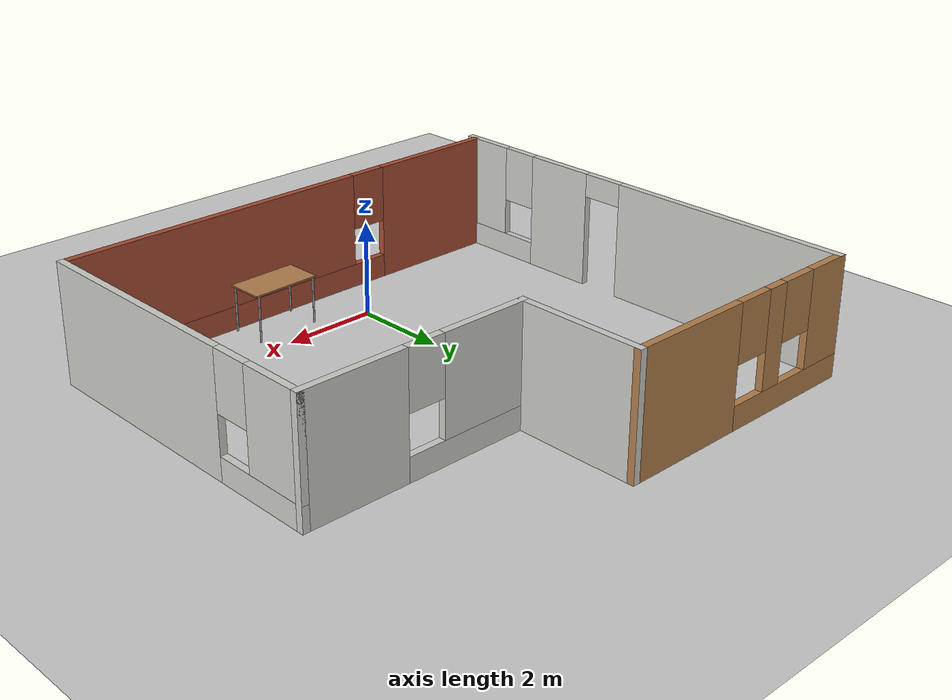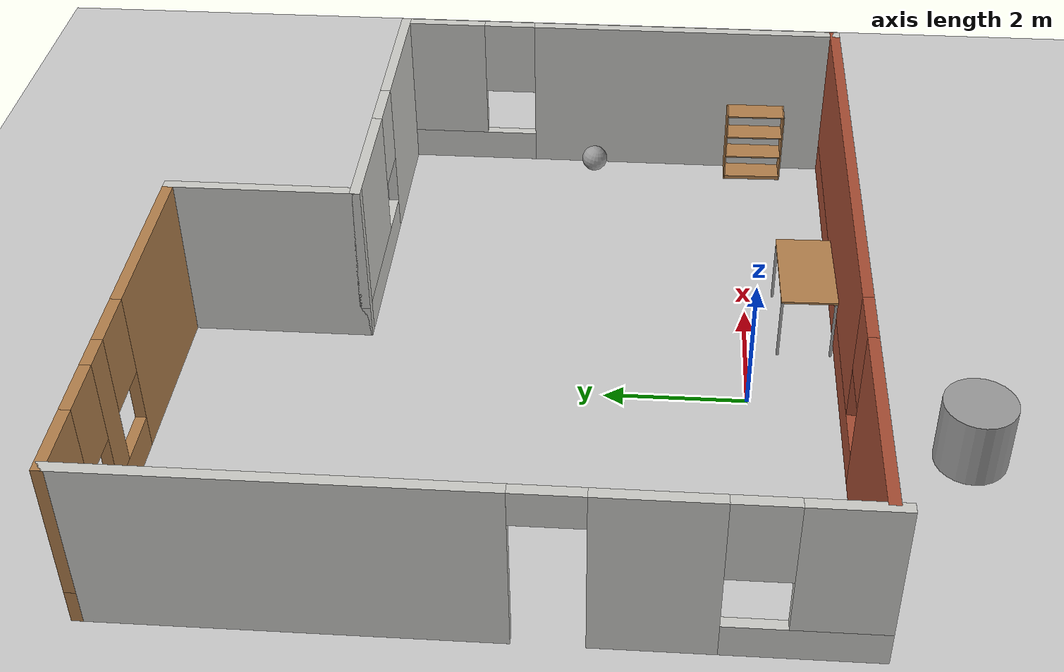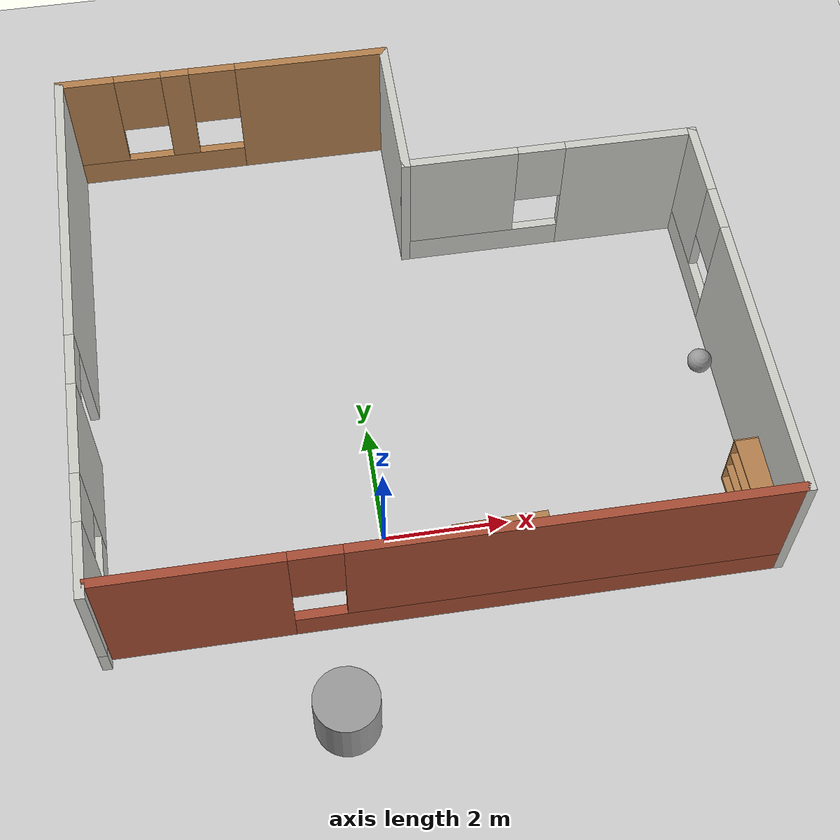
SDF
<sdf version="1.6">
 <world name="default">
  <plugin name="welcome_message" filename="libwelcome_message.so"/>
  <light name="sun" type="directional">
   <pose>0 0 10 0 -0 0</pose>
   <diffuse>0.8 0.8 0.8 1</diffuse>
   <specular>0.2 0.2 0.2 1</specular>
   <attenuation>
    <range>1000</range>
    <constant>0.9</constant>
    <linear>0.01</linear>
    <quadratic>0.001</quadratic>
   </attenuation>
   <direction>-0.5 0.1 -0.9</direction>
  </light>
  <model name="ground_plane">
   <static>1</static>
   <link name="link">
    <collision name="collision">
     <geometry><plane><normal>0 0 1</normal><size>100 100</size></plane></geometry>
     <surface>
      <contact><collide_bitmask>65535</collide_bitmask></contact>
      <friction><ode><mu>100</mu><mu2>50</mu2></ode></friction>
     </surface>
    </collision>
    <visual name="visual">
     <cast_shadows>0</cast_shadows>
     <geometry><plane><normal>0 0 1</normal><size>100 100</size></plane></geometry>
     <material>
      <script><uri>file://media/materials/scripts/gazebo.material</uri><name>Gazebo/Grey</name></script>
     </material>
    </visual>
   </link>
  </model>
  <gravity>0 0 -9.8</gravity>
  <magnetic_field>6e-06 2.3e-05 -4.2e-05</magnetic_field>
  <atmosphere type="adiabatic"/>
  <physics name="default_physics" default="0" type="ode">
   <max_step_size>0.001</max_step_size>
   <real_time_factor>1</real_time_factor>
   <real_time_update_rate>1000</real_time_update_rate>
  </physics>
  <scene><ambient>0.4 0.4 0.4 1</ambient><background>0.7 0.7 0.7 1</background><shadows>1</shadows></scene>
  <spherical_coordinates>
   <surface_model>EARTH_WGS84</surface_model>
   <latitude_deg>0</latitude_deg>
   <longitude_deg>0</longitude_deg>
   <elevation>0</elevation>
   <heading_deg>0</heading_deg>
  </spherical_coordinates>
  <model name="table">
   <static>1</static>
   <link name="link">
    <collision name="surface">
     <pose>0 0 1 0 -0 0</pose>
     <geometry><box><size>1.5 0.8 0.03</size></box></geometry>
     <surface><friction><ode><mu>0.6</mu><mu2>0.6</mu2></ode></friction></surface>
    </collision>
    <visual name="visual1">
     <pose>0 0 1 0 -0 0</pose>
     <geometry><box><size>1.5 0.8 0.03</size></box></geometry>
     <material>
      <script><uri>file://media/materials/scripts/gazebo.material</uri><name>Gazebo/Wood</name></script>
     </material>
    </visual>
    <collision name="front_left_leg">
     <pose>0.68 0.38 0.5 0 -0 0</pose>
     <geometry><cylinder><radius>0.02</radius><length>1</length></cylinder></geometry>
    </collision>
    <visual name="front_left_leg">
     <pose>0.68 0.38 0.5 0 -0 0</pose>
     <geometry><cylinder><radius>0.02</radius><length>1</length></cylinder></geometry>
     <material>
      <script><uri>file://media/materials/scripts/gazebo.material</uri><name>Gazebo/Grey</name></script>
     </material>
    </visual>
    <collision name="front_right_leg">
     <pose>0.68 -0.38 0.5 0 -0 0</pose>
     <geometry><cylinder><radius>0.02</radius><length>1</length></cylinder></geometry>
    </collision>
    <visual name="front_right_leg">
     <pose>0.68 -0.38 0.5 0 -0 0</pose>
     <geometry><cylinder><radius>0.02</radius><length>1</length></cylinder></geometry>
     <material>
      <script><uri>file://media/materials/scripts/gazebo.material</uri><name>Gazebo/Grey</name></script>
     </material>
    </visual>
    <collision name="back_right_leg">
     <pose>-0.68 -0.38 0.5 0 -0 0</pose>
     <geometry><cylinder><radius>0.02</radius><length>1</length></cylinder></geometry>
    </collision>
    <visual name="back_right_leg">
     <pose>-0.68 -0.38 0.5 0 -0 0</pose>
     <geometry><cylinder><radius>0.02</radius><length>1</length></cylinder></geometry>
     <material>
      <script><uri>file://media/materials/scripts/gazebo.material</uri><name>Gazebo/Grey</name></script>
     </material>
    </visual>
    <collision name="back_left_leg">
     <pose>-0.68 0.38 0.5 0 -0 0</pose>
     <geometry><cylinder><radius>0.02</radius><length>1</length></cylinder></geometry>
    </collision>
    <visual name="back_left_leg">
     <pose>-0.68 0.38 0.5 0 -0 0</pose>
     <geometry><cylinder><radius>0.02</radius><length>1</length></cylinder></geometry>
     <material>
      <script><uri>file://media/materials/scripts/gazebo.material</uri><name>Gazebo/Grey</name></script>
     </material>
    </visual>
   </link>
   <pose>1.74292 -0.818656 0 0 -0 0.020924</pose>
  </model>
  <model name="bookshelf">
   <static>1</static>
   <link name="link">
    <inertial><mass>1</mass></inertial>
    <collision name="back">
     <pose>0 0.005 0.6 0 -0 0</pose>
     <geometry><box><size>0.9 0.01 1.2</size></box></geometry>
    </collision>
    <visual name="visual1">
     <pose>0 0.005 0.6 0 -0 0</pose>
     <geometry><box><size>0.9 0.01 1.2</size></box></geometry>
     <material>
      <script><uri>file://media/materials/scripts/gazebo.material</uri><name>Gazebo/Wood</name></script>
     </material>
    </visual>
    <collision name="left_side">
     <pose>0.45 -0.195 0.6 0 -0 0</pose>
     <geometry><box><size>0.02 0.4 1.2</size></box></geometry>
    </collision>
    <visual name="visual2">
     <pose>0.45 -0.195 0.6 0 -0 0</pose>
     <geometry><box><size>0.02 0.4 1.2</size></box></geometry>
     <material>
      <script><uri>file://media/materials/scripts/gazebo.material</uri><name>Gazebo/Wood</name></script>
     </material>
    </visual>
    <collision name="right_side">
     <pose>-0.45 -0.195 0.6 0 -0 0</pose>
     <geometry><box><size>0.02 0.4 1.2</size></box></geometry>
    </collision>
    <visual name="visual3">
     <pose>-0.45 -0.195 0.6 0 -0 0</pose>
     <geometry><box><size>0.02 0.4 1.2</size></box></geometry>
     <material>
      <script><uri>file://media/materials/scripts/gazebo.material</uri><name>Gazebo/Wood</name></script>
     </material>
    </visual>
    <collision name="bottom">
     <pose>0 -0.195 0.03 0 -0 0</pose>
     <geometry><box><size>0.88 0.4 0.06</size></box></geometry>
    </collision>
    <visual name="visual4">
     <pose>0 -0.195 0.03 0 -0 0</pose>
     <geometry><box><size>0.88 0.4 0.06</size></box></geometry>
     <material>
      <script><uri>file://media/materials/scripts/gazebo.material</uri><name>Gazebo/Wood</name></script>
     </material>
    </visual>
    <collision name="top">
     <pose>0 -0.195 1.19 0 -0 0</pose>
     <geometry><box><size>0.88 0.4 0.02</size></box></geometry>
    </collision>
    <visual name="visual5">
     <pose>0 -0.195 1.19 0 -0 0</pose>
     <geometry><box><size>0.88 0.4 0.02</size></box></geometry>
     <material>
      <script><uri>file://media/materials/scripts/gazebo.material</uri><name>Gazebo/Wood</name></script>
     </material>
    </visual>
    <collision name="low_shelf">
     <pose>0 -0.195 0.43 0 -0 0</pose>
     <geometry><box><size>0.88 0.4 0.02</size></box></geometry>
    </collision>
    <visual name="visual6">
     <pose>0 -0.195 0.43 0 -0 0</pose>
     <geometry><box><size>0.88 0.4 0.02</size></box></geometry>
     <material>
      <script><uri>file://media/materials/scripts/gazebo.material</uri><name>Gazebo/Wood</name></script>
     </material>
    </visual>
    <collision name="high_shelf">
     <pose>0 -0.195 0.8 0 -0 0</pose>
     <geometry><box><size>0.88 0.4 0.02</size></box></geometry>
    </collision>
    <visual name="visual7">
     <pose>0 -0.195 0.8 0 -0 0</pose>
     <geometry><box><size>0.88 0.4 0.02</size></box></geometry>
     <material>
      <script><uri>file://media/materials/scripts/gazebo.material</uri><name>Gazebo/Wood</name></script>
     </material>
    </visual>
   </link>
   <pose>5.96491 -0.173823 0 0 0 -1.55123</pose>
  </model>
  <model name="unit_cylinder">
   <pose>-0.957689 -2.95047 0.499991 0 -0 0.00277</pose>
   <link name="link">
    <inertial>
     <mass>1</mass>
     <inertia><ixx>0.145833</ixx><ixy>0</ixy><ixz>0</ixz><iyy>0.145833</iyy><iyz>0</iyz><izz>0.125</izz></inertia>
    </inertial>
    <collision name="collision">
     <geometry><cylinder><radius>0.499999</radius><length>1</length></cylinder></geometry>
    </collision>
    <visual name="visual">
     <geometry><cylinder><radius>0.499999</radius><length>1</length></cylinder></geometry>
     <material>
      <script><name>Gazebo/Grey</name><uri>file://media/materials/scripts/gazebo.material</uri></script>
     </material>
    </visual>
   </link>
  </model>
  <model name="unit_sphere">
   <pose>5.72385 2.43012 0.204133 0.195248 -0.055192 0.27202</pose>
   <link name="link">
    <inertial>
     <mass>1</mass>
     <inertia><ixx>0.1</ixx><ixy>0</ixy><ixz>0</ixz><iyy>0.1</iyy><iyz>0</iyz><izz>0.1</izz></inertia>
    </inertial>
    <collision name="collision"><geometry><sphere><radius>0.204133</radius></sphere></geometry></collision>
    <visual name="visual">
     <geometry><sphere><radius>0.204133</radius></sphere></geometry>
     <material>
      <script><name>Gazebo/Grey</name><uri>file://media/materials/scripts/gazebo.material</uri></script>
     </material>
    </visual>
   </link>
  </model>
  <model name="Untitled3">
   <pose>0.795 3.31 0 0 -0 0</pose>
   <link name="Wall_0">
    <pose>0.05 -4.65 0 0 -0 0</pose>
    <visual name="Wall_0_Visual_0">
     <pose>-3.81993 0 1.25 0 -0 0</pose>
     <geometry><box><size>2.86014 0.15 2.5</size></box></geometry>
     <material>
      <script><uri>file://media/materials/scripts/gazebo.material</uri><name>Gazebo/Bricks</name></script>
      <ambient>1 1 1 1</ambient>
     </material>
     <meta><layer>0</layer></meta>
    </visual>
    <collision name="Wall_0_Collision_0">
     <geometry><box><size>2.86014 0.15 2.5</size></box></geometry>
     <pose>-3.81993 0 1.25 0 -0 0</pose>
    </collision>
    <visual name="Wall_0_Visual_1">
     <pose>1.43007 0 0.25 0 -0 0</pose>
     <geometry><box><size>7.63986 0.15 0.5</size></box></geometry>
     <material>
      <script><uri>file://media/materials/scripts/gazebo.material</uri><name>Gazebo/Bricks</name></script>
      <ambient>1 1 1 1</ambient>
     </material>
     <meta><layer>0</layer></meta>
    </visual>
    <collision name="Wall_0_Collision_1">
     <geometry><box><size>7.63986 0.15 0.5</size></box></geometry>
     <pose>1.43007 0 0.25 0 -0 0</pose>
    </collision>
    <visual name="Wall_0_Visual_2">
     <pose>1.83007 0 1.5 0 -0 0</pose>
     <geometry><box><size>6.83986 0.15 2</size></box></geometry>
     <material>
      <script><uri>file://media/materials/scripts/gazebo.material</uri><name>Gazebo/Bricks</name></script>
      <ambient>1 1 1 1</ambient>
     </material>
     <meta><layer>0</layer></meta>
    </visual>
    <collision name="Wall_0_Collision_2">
     <geometry><box><size>6.83986 0.15 2</size></box></geometry>
     <pose>1.83007 0 1.5 0 -0 0</pose>
    </collision>
    <visual name="Wall_0_Visual_3">
     <pose>-1.98986 0 1.9 0 -0 0</pose>
     <geometry><box><size>0.8 0.15 1.2</size></box></geometry>
     <material>
      <script><uri>file://media/materials/scripts/gazebo.material</uri><name>Gazebo/Bricks</name></script>
      <ambient>1 1 1 1</ambient>
     </material>
     <meta><layer>0</layer></meta>
    </visual>
    <collision name="Wall_0_Collision_3">
     <geometry><box><size>0.8 0.15 1.2</size></box></geometry>
     <pose>-1.98986 0 1.9 0 -0 0</pose>
    </collision>
   </link>
   <link name="Wall_1">
    <pose>5.225 -1.225 0 0 -0 1.5708</pose>
    <visual name="Wall_1_Visual_0">
     <pose>-1.07577 0 1.25 0 -0 0</pose>
     <geometry><box><size>4.84847 0.15 2.5</size></box></geometry>
     <material>
      <script><uri>file://media/materials/scripts/gazebo.material</uri><name>Gazebo/CeilingTiled</name></script>
      <ambient>1 1 1 1</ambient>
     </material>
     <meta><layer>0</layer></meta>
    </visual>
    <collision name="Wall_1_Collision_0">
     <geometry><box><size>4.84847 0.15 2.5</size></box></geometry>
     <pose>-1.07577 0 1.25 0 -0 0</pose>
    </collision>
    <visual name="Wall_1_Visual_1">
     <pose>2.42423 0 0.25 0 -0 0</pose>
     <geometry><box><size>2.15153 0.15 0.5</size></box></geometry>
     <material>
      <script><uri>file://media/materials/scripts/gazebo.material</uri><name>Gazebo/CeilingTiled</name></script>
      <ambient>1 1 1 1</ambient>
     </material>
     <meta><layer>0</layer></meta>
    </visual>
    <collision name="Wall_1_Collision_1">
     <geometry><box><size>2.15153 0.15 0.5</size></box></geometry>
     <pose>2.42423 0 0.25 0 -0 0</pose>
    </collision>
    <visual name="Wall_1_Visual_2">
     <pose>2.82423 0 1.5 0 -0 0</pose>
     <geometry><box><size>1.35153 0.15 2</size></box></geometry>
     <material>
      <script><uri>file://media/materials/scripts/gazebo.material</uri><name>Gazebo/CeilingTiled</name></script>
      <ambient>1 1 1 1</ambient>
     </material>
     <meta><layer>0</layer></meta>
    </visual>
    <collision name="Wall_1_Collision_2">
     <geometry><box><size>1.35153 0.15 2</size></box></geometry>
     <pose>2.82423 0 1.5 0 -0 0</pose>
    </collision>
    <visual name="Wall_1_Visual_3">
     <pose>1.74847 0 1.9 0 -0 0</pose>
     <geometry><box><size>0.8 0.15 1.2</size></box></geometry>
     <material>
      <script><uri>file://media/materials/scripts/gazebo.material</uri><name>Gazebo/CeilingTiled</name></script>
      <ambient>1 1 1 1</ambient>
     </material>
     <meta><layer>0</layer></meta>
    </visual>
    <collision name="Wall_1_Collision_3">
     <geometry><box><size>0.8 0.15 1.2</size></box></geometry>
     <pose>1.74847 0 1.9 0 -0 0</pose>
    </collision>
   </link>
   <link name="Wall_2">
    <pose>2.8 2.2 0 0 -0 3.14159</pose>
    <visual name="Wall_2_Visual_0">
     <pose>-1.37903 0 1.25 0 -0 0</pose>
     <geometry><box><size>2.24195 0.15 2.5</size></box></geometry>
     <material>
      <script><uri>file://media/materials/scripts/gazebo.material</uri><name>Gazebo/CeilingTiled</name></script>
      <ambient>1 0 1 1</ambient>
     </material>
     <meta><layer>0</layer></meta>
    </visual>
    <collision name="Wall_2_Collision_0">
     <geometry><box><size>2.24195 0.15 2.5</size></box></geometry>
     <pose>-1.37903 0 1.25 0 -0 0</pose>
    </collision>
    <visual name="Wall_2_Visual_1">
     <pose>1.12097 0 0.25 0 -0 0</pose>
     <geometry><box><size>2.75805 0.15 0.5</size></box></geometry>
     <material>
      <script><uri>file://media/materials/scripts/gazebo.material</uri><name>Gazebo/CeilingTiled</name></script>
      <ambient>1 0 1 1</ambient>
     </material>
     <meta><layer>0</layer></meta>
    </visual>
    <collision name="Wall_2_Collision_1">
     <geometry><box><size>2.75805 0.15 0.5</size></box></geometry>
     <pose>1.12097 0 0.25 0 -0 0</pose>
    </collision>
    <visual name="Wall_2_Visual_2">
     <pose>1.52097 0 1.5 0 -0 0</pose>
     <geometry><box><size>1.95805 0.15 2</size></box></geometry>
     <material>
      <script><uri>file://media/materials/scripts/gazebo.material</uri><name>Gazebo/CeilingTiled</name></script>
      <ambient>1 0 1 1</ambient>
     </material>
     <meta><layer>0</layer></meta>
    </visual>
    <collision name="Wall_2_Collision_2">
     <geometry><box><size>1.95805 0.15 2</size></box></geometry>
     <pose>1.52097 0 1.5 0 -0 0</pose>
    </collision>
    <visual name="Wall_2_Visual_3">
     <pose>0.141946 0 1.9 0 -0 0</pose>
     <geometry><box><size>0.8 0.15 1.2</size></box></geometry>
     <material>
      <script><uri>file://media/materials/scripts/gazebo.material</uri><name>Gazebo/CeilingTiled</name></script>
      <ambient>1 0 1 1</ambient>
     </material>
     <meta><layer>0</layer></meta>
    </visual>
    <collision name="Wall_2_Collision_3">
     <geometry><box><size>0.8 0.15 1.2</size></box></geometry>
     <pose>0.141946 0 1.9 0 -0 0</pose>
    </collision>
   </link>
   <link name="Wall_3">
    <collision name="Wall_3_Collision">
     <geometry><box><size>2.75 0.15 2.5</size></box></geometry>
     <pose>0 0 1.25 0 -0 0</pose>
    </collision>
    <visual name="Wall_3_Visual">
     <pose>0 0 1.25 0 -0 0</pose>
     <geometry><box><size>2.75 0.15 2.5</size></box></geometry>
     <material>
      <script><uri>file://media/materials/scripts/gazebo.material</uri><name>Gazebo/CeilingTiled</name></script>
      <ambient>0.435294 0.796078 0.67451 1</ambient>
     </material>
     <meta><layer>0</layer></meta>
    </visual>
    <pose>0.375 3.5 0 0 -0 1.5708</pose>
   </link>
   <link name="Wall_4">
    <pose>-2.425 4.8 0 0 -0 3.14159</pose>
    <visual name="Wall_4_Visual_0">
     <pose>-1.54364 0 1.25 0 -0 0</pose>
     <geometry><box><size>2.66273 0.15 2.5</size></box></geometry>
     <material>
      <script><uri>file://media/materials/scripts/gazebo.material</uri><name>Gazebo/Wood</name></script>
      <ambient>1 1 1 1</ambient>
     </material>
     <meta><layer>0</layer></meta>
    </visual>
    <collision name="Wall_4_Collision_0">
     <geometry><box><size>2.66273 0.15 2.5</size></box></geometry>
     <pose>-1.54364 0 1.25 0 -0 0</pose>
    </collision>
    <visual name="Wall_4_Visual_1">
     <pose>1.33136 0 0.25 0 -0 0</pose>
     <geometry><box><size>3.08727 0.15 0.5</size></box></geometry>
     <material>
      <script><uri>file://media/materials/scripts/gazebo.material</uri><name>Gazebo/Wood</name></script>
      <ambient>1 1 1 1</ambient>
     </material>
     <meta><layer>0</layer></meta>
    </visual>
    <collision name="Wall_4_Collision_1">
     <geometry><box><size>3.08727 0.15 0.5</size></box></geometry>
     <pose>1.33136 0 0.25 0 -0 0</pose>
    </collision>
    <visual name="Wall_4_Visual_2">
     <pose>0.82695 0 1.5 0 -0 0</pose>
     <geometry><box><size>0.478445 0.15 2</size></box></geometry>
     <material>
      <script><uri>file://media/materials/scripts/gazebo.material</uri><name>Gazebo/Wood</name></script>
      <ambient>1 1 1 1</ambient>
     </material>
     <meta><layer>0</layer></meta>
    </visual>
    <collision name="Wall_4_Collision_2">
     <geometry><box><size>0.478445 0.15 2</size></box></geometry>
     <pose>0.82695 0 1.5 0 -0 0</pose>
    </collision>
    <visual name="Wall_4_Visual_3">
     <pose>2.37059 0 1.5 0 -0 0</pose>
     <geometry><box><size>1.00883 0.15 2</size></box></geometry>
     <material>
      <script><uri>file://media/materials/scripts/gazebo.material</uri><name>Gazebo/Wood</name></script>
      <ambient>1 1 1 1</ambient>
     </material>
     <meta><layer>0</layer></meta>
    </visual>
    <collision name="Wall_4_Collision_3">
     <geometry><box><size>1.00883 0.15 2</size></box></geometry>
     <pose>2.37059 0 1.5 0 -0 0</pose>
    </collision>
    <visual name="Wall_4_Visual_4">
     <pose>0.187727 0 1.9 0 -0 0</pose>
     <geometry><box><size>0.8 0.15 1.2</size></box></geometry>
     <material>
      <script><uri>file://media/materials/scripts/gazebo.material</uri><name>Gazebo/Wood</name></script>
      <ambient>1 1 1 1</ambient>
     </material>
     <meta><layer>0</layer></meta>
    </visual>
    <collision name="Wall_4_Collision_4">
     <geometry><box><size>0.8 0.15 1.2</size></box></geometry>
     <pose>0.187727 0 1.9 0 -0 0</pose>
    </collision>
    <visual name="Wall_4_Visual_5">
     <pose>1.46617 0 1.9 0 -0 0</pose>
     <geometry><box><size>0.8 0.15 1.2</size></box></geometry>
     <material>
      <script><uri>file://media/materials/scripts/gazebo.material</uri><name>Gazebo/Wood</name></script>
      <ambient>1 1 1 1</ambient>
     </material>
     <meta><layer>0</layer></meta>
    </visual>
    <collision name="Wall_4_Collision_5">
     <geometry><box><size>0.8 0.15 1.2</size></box></geometry>
     <pose>1.46617 0 1.9 0 -0 0</pose>
    </collision>
   </link>
   <link name="Wall_5">
    <pose>-5.225 0 0 0 0 -1.5708</pose>
    <visual name="Wall_5_Visual_0">
     <pose>-2.22894 0 1.25 0 -0 0</pose>
     <geometry><box><size>5.29212 0.15 2.5</size></box></geometry>
     <material>
      <script><uri>file://media/materials/scripts/gazebo.material</uri><name>Gazebo/CeilingTiled</name></script>
      <ambient>0.333333 0 1 1</ambient>
     </material>
     <meta><layer>0</layer></meta>
    </visual>
    <collision name="Wall_5_Collision_0">
     <geometry><box><size>5.29212 0.15 2.5</size></box></geometry>
     <pose>-2.22894 0 1.25 0 -0 0</pose>
    </collision>
    <visual name="Wall_5_Visual_1">
     <pose>2.09207 0 1.25 0 -0 0</pose>
     <geometry><box><size>1.54989 0.15 2.5</size></box></geometry>
     <material>
      <script><uri>file://media/materials/scripts/gazebo.material</uri><name>Gazebo/CeilingTiled</name></script>
      <ambient>0.333333 0 1 1</ambient>
     </material>
     <meta><layer>0</layer></meta>
    </visual>
    <collision name="Wall_5_Collision_1">
     <geometry><box><size>1.54989 0.15 2.5</size></box></geometry>
     <pose>2.09207 0 1.25 0 -0 0</pose>
    </collision>
    <visual name="Wall_5_Visual_2">
     <pose>3.871 0 0.25 0 -0 0</pose>
     <geometry><box><size>2.00799 0.15 0.5</size></box></geometry>
     <material>
      <script><uri>file://media/materials/scripts/gazebo.material</uri><name>Gazebo/CeilingTiled</name></script>
      <ambient>0.333333 0 1 1</ambient>
     </material>
     <meta><layer>0</layer></meta>
    </visual>
    <collision name="Wall_5_Collision_2">
     <geometry><box><size>2.00799 0.15 0.5</size></box></geometry>
     <pose>3.871 0 0.25 0 -0 0</pose>
    </collision>
    <visual name="Wall_5_Visual_3">
     <pose>4.271 0 1.5 0 -0 0</pose>
     <geometry><box><size>1.20799 0.15 2</size></box></geometry>
     <material>
      <script><uri>file://media/materials/scripts/gazebo.material</uri><name>Gazebo/CeilingTiled</name></script>
      <ambient>0.333333 0 1 1</ambient>
     </material>
     <meta><layer>0</layer></meta>
    </visual>
    <collision name="Wall_5_Collision_3">
     <geometry><box><size>1.20799 0.15 2</size></box></geometry>
     <pose>4.271 0 1.5 0 -0 0</pose>
    </collision>
    <visual name="Wall_5_Visual_4">
     <pose>3.26701 0 1.9 0 -0 0</pose>
     <geometry><box><size>0.8 0.15 1.2</size></box></geometry>
     <material>
      <script><uri>file://media/materials/scripts/gazebo.material</uri><name>Gazebo/CeilingTiled</name></script>
      <ambient>0.333333 0 1 1</ambient>
     </material>
     <meta><layer>0</layer></meta>
    </visual>
    <collision name="Wall_5_Collision_4">
     <geometry><box><size>0.8 0.15 1.2</size></box></geometry>
     <pose>3.26701 0 1.9 0 -0 0</pose>
    </collision>
    <visual name="Wall_5_Visual_5">
     <pose>0.867122 0 2.25 0 -0 0</pose>
     <geometry><box><size>0.9 0.15 0.5</size></box></geometry>
     <material>
      <script><uri>file://media/materials/scripts/gazebo.material</uri><name>Gazebo/CeilingTiled</name></script>
      <ambient>0.333333 0 1 1</ambient>
     </material>
     <meta><layer>0</layer></meta>
    </visual>
    <collision name="Wall_5_Collision_5">
     <geometry><box><size>0.9 0.15 0.5</size></box></geometry>
     <pose>0.867122 0 2.25 0 -0 0</pose>
    </collision>
   </link>
   <static>1</static>
  </model>
 </world>
</sdf>
